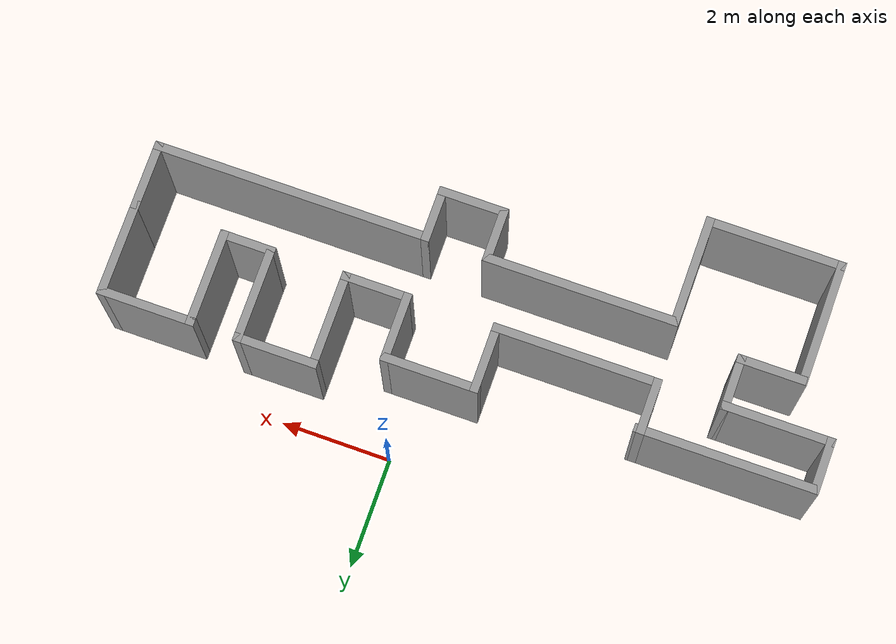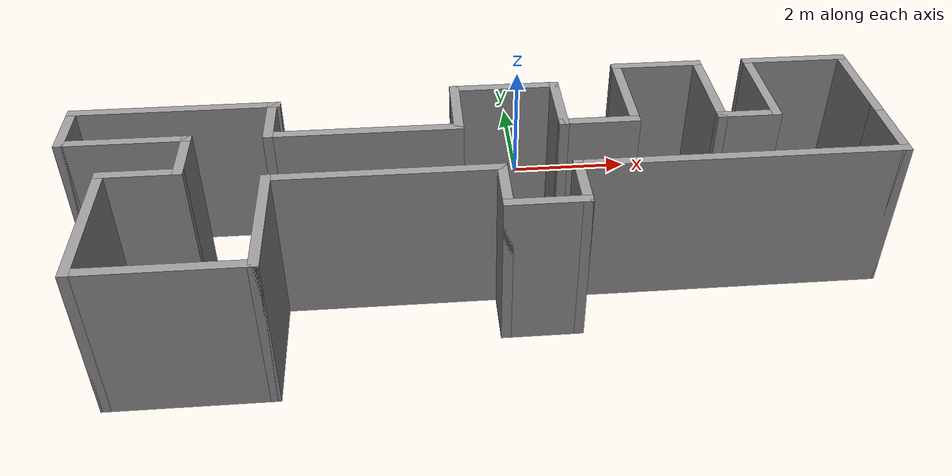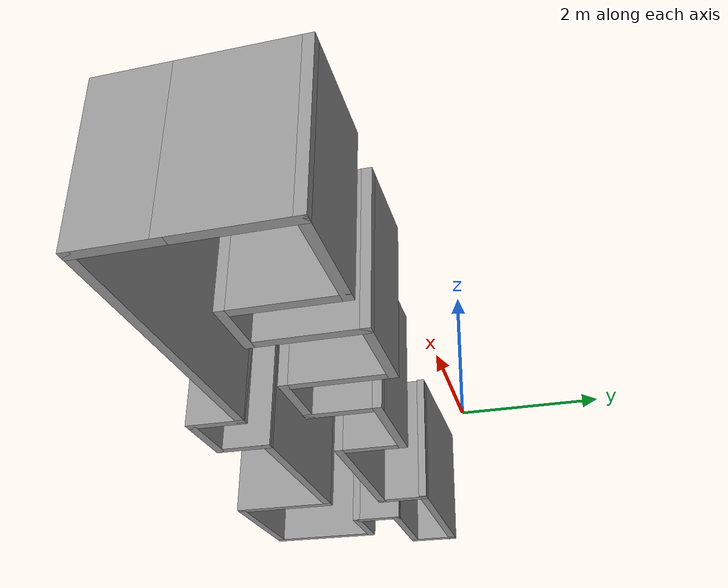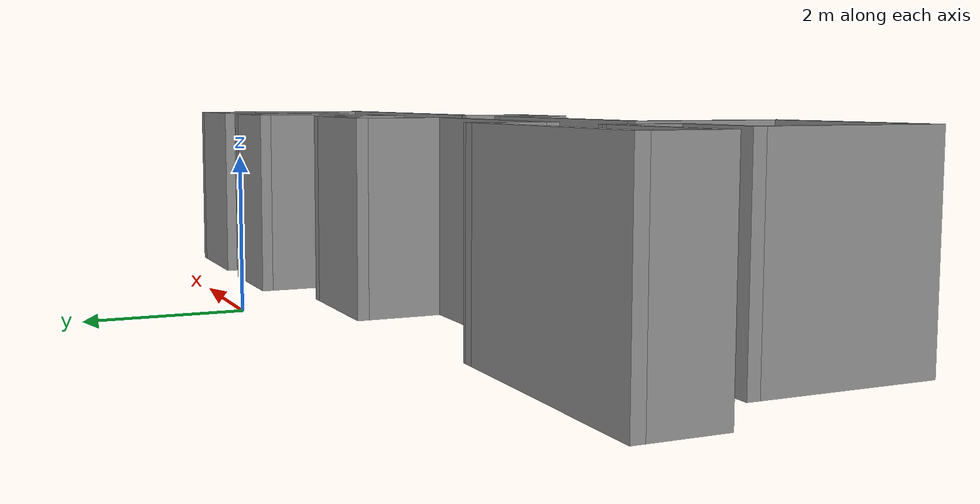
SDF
<?xml version='1.0'?>
<sdf version='1.6'>
  <model name='Yiping_apt'>
    <pose frame=''>-0.86 -2.995 0 0 -0 0</pose>
    <link name='Wall_0'>
      <collision name='Wall_0_Collision'>
        <geometry>
          <box>
            <size>3.25 0.15 2.5</size>
          </box>
        </geometry>
        <pose frame=''>0 0 1.25 0 -0 0</pose>
      </collision>
      <visual name='Wall_0_Visual'>
        <pose frame=''>0 0 1.25 0 -0 0</pose>
        <geometry>
          <box>
            <size>3.25 0.15 2.5</size>
          </box>
        </geometry>
        <material>
          <script>
            <uri>file://media/materials/scripts/gazebo.material</uri>
            <name>Gazebo/Grey</name>
          </script>
          <ambient>1 1 1 1</ambient>
        </material>
      </visual>
      <pose frame=''>-4.65 1.525 0 0 -0 3.14159</pose>
    </link>
    <link name='Wall_1'>
      <collision name='Wall_1_Collision'>
        <geometry>
          <box>
            <size>1 0.15 2.5</size>
          </box>
        </geometry>
        <pose frame=''>0 0 1.25 0 -0 0</pose>
      </collision>
      <visual name='Wall_1_Visual'>
        <pose frame=''>0 0 1.25 0 -0 0</pose>
        <geometry>
          <box>
            <size>1 0.15 2.5</size>
          </box>
        </geometry>
        <material>
          <script>
            <uri>file://media/materials/scripts/gazebo.material</uri>
            <name>Gazebo/Grey</name>
          </script>
          <ambient>1 1 1 1</ambient>
        </material>
      </visual>
      <pose frame=''>-6.2 1.1 0 0 0 -1.5708</pose>
    </link>
    <link name='Wall_10'>
      <collision name='Wall_10_Collision'>
        <geometry>
          <box>
            <size>1.25 0.15 2.5</size>
          </box>
        </geometry>
        <pose frame=''>0 0 1.25 0 -0 0</pose>
      </collision>
      <visual name='Wall_10_Visual'>
        <pose frame=''>0 0 1.25 0 -0 0</pose>
        <geometry>
          <box>
            <size>1.25 0.15 2.5</size>
          </box>
        </geometry>
        <material>
          <script>
            <uri>file://media/materials/scripts/gazebo.material</uri>
            <name>Gazebo/Grey</name>
          </script>
          <ambient>1 1 1 1</ambient>
        </material>
      </visual>
      <pose frame=''>0.8 -1.275 0 0 -0 0</pose>
    </link>
    <link name='Wall_11'>
      <collision name='Wall_11_Collision'>
        <geometry>
          <box>
            <size>1 0.15 2.5</size>
          </box>
        </geometry>
        <pose frame=''>0 0 1.25 0 -0 0</pose>
      </collision>
      <visual name='Wall_11_Visual'>
        <pose frame=''>0 0 1.25 0 -0 0</pose>
        <geometry>
          <box>
            <size>1 0.15 2.5</size>
          </box>
        </geometry>
        <material>
          <script>
            <uri>file://media/materials/scripts/gazebo.material</uri>
            <name>Gazebo/Grey</name>
          </script>
          <ambient>1 1 1 1</ambient>
        </material>
      </visual>
      <pose frame=''>1.35 -0.85 0 0 -0 1.5708</pose>
    </link>
    <link name='Wall_12'>
      <collision name='Wall_12_Collision'>
        <geometry>
          <box>
            <size>5 0.15 2.5</size>
          </box>
        </geometry>
        <pose frame=''>0 0 1.25 0 -0 0</pose>
      </collision>
      <visual name='Wall_12_Visual'>
        <pose frame=''>0 0 1.25 0 -0 0</pose>
        <geometry>
          <box>
            <size>5 0.15 2.5</size>
          </box>
        </geometry>
        <material>
          <script>
            <uri>file://media/materials/scripts/gazebo.material</uri>
            <name>Gazebo/Grey</name>
          </script>
          <ambient>1 1 1 1</ambient>
        </material>
      </visual>
      <pose frame=''>3.775 -0.425 0 0 -0 0</pose>
    </link>
    <link name='Wall_13'>
      <collision name='Wall_13_Collision'>
        <geometry>
          <box>
            <size>1.25 0.15 2.5</size>
          </box>
        </geometry>
        <pose frame=''>0 0 1.25 0 -0 0</pose>
      </collision>
      <visual name='Wall_13_Visual'>
        <pose frame=''>0 0 1.25 0 -0 0</pose>
        <geometry>
          <box>
            <size>1.25 0.15 2.5</size>
          </box>
        </geometry>
        <material>
          <script>
            <uri>file://media/materials/scripts/gazebo.material</uri>
            <name>Gazebo/Grey</name>
          </script>
          <ambient>1 1 1 1</ambient>
        </material>
      </visual>
      <pose frame=''>6.2 0.125 0 0 -0 1.5708</pose>
    </link>
    <link name='Wall_14'>
      <collision name='Wall_14_Collision'>
        <geometry>
          <box>
            <size>1.75 0.15 2.5</size>
          </box>
        </geometry>
        <pose frame=''>0 0 1.25 0 -0 0</pose>
      </collision>
      <visual name='Wall_14_Visual'>
        <pose frame=''>0 0 1.25 0 -0 0</pose>
        <geometry>
          <box>
            <size>1.75 0.15 2.5</size>
          </box>
        </geometry>
        <material>
          <script>
            <uri>file://media/materials/scripts/gazebo.material</uri>
            <name>Gazebo/Grey</name>
          </script>
          <ambient>1 1 1 1</ambient>
        </material>
      </visual>
      <pose frame=''>6.2 1.475 0 0 -0 1.5708</pose>
    </link>
    <link name='Wall_15'>
      <collision name='Wall_15_Collision'>
        <geometry>
          <box>
            <size>1.75 0.15 2.5</size>
          </box>
        </geometry>
        <pose frame=''>0 0 1.25 0 -0 0</pose>
      </collision>
      <visual name='Wall_15_Visual'>
        <pose frame=''>0 0 1.25 0 -0 0</pose>
        <geometry>
          <box>
            <size>1.75 0.15 2.5</size>
          </box>
        </geometry>
        <material>
          <script>
            <uri>file://media/materials/scripts/gazebo.material</uri>
            <name>Gazebo/Grey</name>
          </script>
          <ambient>1 1 1 1</ambient>
        </material>
      </visual>
      <pose frame=''>5.4 2.275 0 0 -0 3.14159</pose>
    </link>
    <link name='Wall_16'>
      <collision name='Wall_16_Collision'>
        <geometry>
          <box>
            <size>1.75 0.15 2.5</size>
          </box>
        </geometry>
        <pose frame=''>0 0 1.25 0 -0 0</pose>
      </collision>
      <visual name='Wall_16_Visual'>
        <pose frame=''>0 0 1.25 0 -0 0</pose>
        <geometry>
          <box>
            <size>1.75 0.15 2.5</size>
          </box>
        </geometry>
        <material>
          <script>
            <uri>file://media/materials/scripts/gazebo.material</uri>
            <name>Gazebo/Grey</name>
          </script>
          <ambient>1 1 1 1</ambient>
        </material>
      </visual>
      <pose frame=''>4.6 1.475 0 0 0 -1.5708</pose>
    </link>
    <link name='Wall_17'>
      <collision name='Wall_17_Collision'>
        <geometry>
          <box>
            <size>1 0.15 2.5</size>
          </box>
        </geometry>
        <pose frame=''>0 0 1.25 0 -0 0</pose>
      </collision>
      <visual name='Wall_17_Visual'>
        <pose frame=''>0 0 1.25 0 -0 0</pose>
        <geometry>
          <box>
            <size>1 0.15 2.5</size>
          </box>
        </geometry>
        <material>
          <script>
            <uri>file://media/materials/scripts/gazebo.material</uri>
            <name>Gazebo/Grey</name>
          </script>
          <ambient>1 1 1 1</ambient>
        </material>
      </visual>
      <pose frame=''>4.175 0.675 0 0 -0 3.14159</pose>
    </link>
    <link name='Wall_18'>
      <collision name='Wall_18_Collision'>
        <geometry>
          <box>
            <size>1.75 0.15 2.5</size>
          </box>
        </geometry>
        <pose frame=''>0 0 1.25 0 -0 0</pose>
      </collision>
      <visual name='Wall_18_Visual'>
        <pose frame=''>0 0 1.25 0 -0 0</pose>
        <geometry>
          <box>
            <size>1.75 0.15 2.5</size>
          </box>
        </geometry>
        <material>
          <script>
            <uri>file://media/materials/scripts/gazebo.material</uri>
            <name>Gazebo/Grey</name>
          </script>
          <ambient>1 1 1 1</ambient>
        </material>
      </visual>
      <pose frame=''>3.75 1.475 0 0 -0 1.5708</pose>
    </link>
    <link name='Wall_19'>
      <collision name='Wall_19_Collision'>
        <geometry>
          <box>
            <size>1.5 0.15 2.5</size>
          </box>
        </geometry>
        <pose frame=''>0 0 1.25 0 -0 0</pose>
      </collision>
      <visual name='Wall_19_Visual'>
        <pose frame=''>0 0 1.25 0 -0 0</pose>
        <geometry>
          <box>
            <size>1.5 0.15 2.5</size>
          </box>
        </geometry>
        <material>
          <script>
            <uri>file://media/materials/scripts/gazebo.material</uri>
            <name>Gazebo/Grey</name>
          </script>
          <ambient>1 1 1 1</ambient>
        </material>
      </visual>
      <pose frame=''>3.075 2.275 0 0 -0 3.14159</pose>
    </link>
    <link name='Wall_2'>
      <collision name='Wall_2_Collision'>
        <geometry>
          <box>
            <size>2 0.15 2.5</size>
          </box>
        </geometry>
        <pose frame=''>0 0 1.25 0 -0 0</pose>
      </collision>
      <visual name='Wall_2_Visual'>
        <pose frame=''>0 0 1.25 0 -0 0</pose>
        <geometry>
          <box>
            <size>2 0.15 2.5</size>
          </box>
        </geometry>
        <material>
          <script>
            <uri>file://media/materials/scripts/gazebo.material</uri>
            <name>Gazebo/Grey</name>
          </script>
          <ambient>1 1 1 1</ambient>
        </material>
      </visual>
      <pose frame=''>-5.275 0.675 0 0 -0 0</pose>
    </link>
    <link name='Wall_20'>
      <collision name='Wall_20_Collision'>
        <geometry>
          <box>
            <size>1.75 0.15 2.5</size>
          </box>
        </geometry>
        <pose frame=''>0 0 1.25 0 -0 0</pose>
      </collision>
      <visual name='Wall_20_Visual'>
        <pose frame=''>0 0 1.25 0 -0 0</pose>
        <geometry>
          <box>
            <size>1.75 0.15 2.5</size>
          </box>
        </geometry>
        <material>
          <script>
            <uri>file://media/materials/scripts/gazebo.material</uri>
            <name>Gazebo/Grey</name>
          </script>
          <ambient>1 1 1 1</ambient>
        </material>
      </visual>
      <pose frame=''>2.4 1.475 0 0 0 -1.5708</pose>
    </link>
    <link name='Wall_21'>
      <collision name='Wall_21_Collision'>
        <geometry>
          <box>
            <size>1.25 0.15 2.5</size>
          </box>
        </geometry>
        <pose frame=''>0 0 1.25 0 -0 0</pose>
      </collision>
      <visual name='Wall_21_Visual'>
        <pose frame=''>0 0 1.25 0 -0 0</pose>
        <geometry>
          <box>
            <size>1.25 0.15 2.5</size>
          </box>
        </geometry>
        <material>
          <script>
            <uri>file://media/materials/scripts/gazebo.material</uri>
            <name>Gazebo/Grey</name>
          </script>
          <ambient>1 1 1 1</ambient>
        </material>
      </visual>
      <pose frame=''>1.85 0.675 0 0 -0 3.14159</pose>
    </link>
    <link name='Wall_22'>
      <collision name='Wall_22_Collision'>
        <geometry>
          <box>
            <size>1.25 0.15 2.5</size>
          </box>
        </geometry>
        <pose frame=''>0 0 1.25 0 -0 0</pose>
      </collision>
      <visual name='Wall_22_Visual'>
        <pose frame=''>0 0 1.25 0 -0 0</pose>
        <geometry>
          <box>
            <size>1.25 0.15 2.5</size>
          </box>
        </geometry>
        <material>
          <script>
            <uri>file://media/materials/scripts/gazebo.material</uri>
            <name>Gazebo/Grey</name>
          </script>
          <ambient>1 1 1 1</ambient>
        </material>
      </visual>
      <pose frame=''>1.3 1.225 0 0 -0 1.5708</pose>
    </link>
    <link name='Wall_23'>
      <collision name='Wall_23_Collision'>
        <geometry>
          <box>
            <size>1.75 0.15 2.5</size>
          </box>
        </geometry>
        <pose frame=''>0 0 1.25 0 -0 0</pose>
      </collision>
      <visual name='Wall_23_Visual'>
        <pose frame=''>0 0 1.25 0 -0 0</pose>
        <geometry>
          <box>
            <size>1.75 0.15 2.5</size>
          </box>
        </geometry>
        <material>
          <script>
            <uri>file://media/materials/scripts/gazebo.material</uri>
            <name>Gazebo/Grey</name>
          </script>
          <ambient>1 1 1 1</ambient>
        </material>
      </visual>
      <pose frame=''>0.5 1.775 0 0 -0 3.14159</pose>
    </link>
    <link name='Wall_24'>
      <collision name='Wall_24_Collision'>
        <geometry>
          <box>
            <size>1.25 0.15 2.5</size>
          </box>
        </geometry>
        <pose frame=''>0 0 1.25 0 -0 0</pose>
      </collision>
      <visual name='Wall_24_Visual'>
        <pose frame=''>0 0 1.25 0 -0 0</pose>
        <geometry>
          <box>
            <size>1.25 0.15 2.5</size>
          </box>
        </geometry>
        <material>
          <script>
            <uri>file://media/materials/scripts/gazebo.material</uri>
            <name>Gazebo/Grey</name>
          </script>
          <ambient>1 1 1 1</ambient>
        </material>
      </visual>
      <pose frame=''>-0.3 1.225 0 0 0 -1.5708</pose>
    </link>
    <link name='Wall_25'>
      <collision name='Wall_25_Collision'>
        <geometry>
          <box>
            <size>3 0.15 2.5</size>
          </box>
        </geometry>
        <pose frame=''>0 0 1.25 0 -0 0</pose>
      </collision>
      <visual name='Wall_25_Visual'>
        <pose frame=''>0 0 1.25 0 -0 0</pose>
        <geometry>
          <box>
            <size>3 0.15 2.5</size>
          </box>
        </geometry>
        <material>
          <script>
            <uri>file://media/materials/scripts/gazebo.material</uri>
            <name>Gazebo/Grey</name>
          </script>
          <ambient>1 1 1 1</ambient>
        </material>
      </visual>
      <pose frame=''>-1.725 0.675 0 0 -0 3.14159</pose>
    </link>
    <link name='Wall_26'>
      <collision name='Wall_26_Collision'>
        <geometry>
          <box>
            <size>1 0.15 2.5</size>
          </box>
        </geometry>
        <pose frame=''>0 0 1.25 0 -0 0</pose>
      </collision>
      <visual name='Wall_26_Visual'>
        <pose frame=''>0 0 1.25 0 -0 0</pose>
        <geometry>
          <box>
            <size>1 0.15 2.5</size>
          </box>
        </geometry>
        <material>
          <script>
            <uri>file://media/materials/scripts/gazebo.material</uri>
            <name>Gazebo/Grey</name>
          </script>
          <ambient>1 1 1 1</ambient>
        </material>
      </visual>
      <pose frame=''>-3.15 1.1 0 0 -0 1.5708</pose>
    </link>
    <link name='Wall_3'>
      <collision name='Wall_3_Collision'>
        <geometry>
          <box>
            <size>1 0.15 2.5</size>
          </box>
        </geometry>
        <pose frame=''>0 0 1.25 0 -0 0</pose>
      </collision>
      <visual name='Wall_3_Visual'>
        <pose frame=''>0 0 1.25 0 -0 0</pose>
        <geometry>
          <box>
            <size>1 0.15 2.5</size>
          </box>
        </geometry>
        <material>
          <script>
            <uri>file://media/materials/scripts/gazebo.material</uri>
            <name>Gazebo/Grey</name>
          </script>
          <ambient>1 1 1 1</ambient>
        </material>
      </visual>
      <pose frame=''>-4.35 0.25 0 0 0 -1.5708</pose>
    </link>
    <link name='Wall_4'>
      <collision name='Wall_4_Collision'>
        <geometry>
          <box>
            <size>1.25 0.15 2.5</size>
          </box>
        </geometry>
        <pose frame=''>0 0 1.25 0 -0 0</pose>
      </collision>
      <visual name='Wall_4_Visual'>
        <pose frame=''>0 0 1.25 0 -0 0</pose>
        <geometry>
          <box>
            <size>1.25 0.15 2.5</size>
          </box>
        </geometry>
        <material>
          <script>
            <uri>file://media/materials/scripts/gazebo.material</uri>
            <name>Gazebo/Grey</name>
          </script>
          <ambient>1 1 1 1</ambient>
        </material>
      </visual>
      <pose frame=''>-4.9 -0.175 0 0 -0 3.14159</pose>
    </link>
    <link name='Wall_5'>
      <collision name='Wall_5_Collision'>
        <geometry>
          <box>
            <size>2.25 0.15 2.5</size>
          </box>
        </geometry>
        <pose frame=''>0 0 1.25 0 -0 0</pose>
      </collision>
      <visual name='Wall_5_Visual'>
        <pose frame=''>0 0 1.25 0 -0 0</pose>
        <geometry>
          <box>
            <size>2.25 0.15 2.5</size>
          </box>
        </geometry>
        <material>
          <script>
            <uri>file://media/materials/scripts/gazebo.material</uri>
            <name>Gazebo/Grey</name>
          </script>
          <ambient>1 1 1 1</ambient>
        </material>
      </visual>
      <pose frame=''>-5.45 -1.225 0 0 0 -1.5708</pose>
    </link>
    <link name='Wall_6'>
      <collision name='Wall_6_Collision'>
        <geometry>
          <box>
            <size>2.5 0.15 2.5</size>
          </box>
        </geometry>
        <pose frame=''>0 0 1.25 0 -0 0</pose>
      </collision>
      <visual name='Wall_6_Visual'>
        <pose frame=''>0 0 1.25 0 -0 0</pose>
        <geometry>
          <box>
            <size>2.5 0.15 2.5</size>
          </box>
        </geometry>
        <material>
          <script>
            <uri>file://media/materials/scripts/gazebo.material</uri>
            <name>Gazebo/Grey</name>
          </script>
          <ambient>1 1 1 1</ambient>
        </material>
      </visual>
      <pose frame=''>-4.275 -2.275 0 0 -0 0</pose>
    </link>
    <link name='Wall_7'>
      <collision name='Wall_7_Collision'>
        <geometry>
          <box>
            <size>2 0.15 2.5</size>
          </box>
        </geometry>
        <pose frame=''>0 0 1.25 0 -0 0</pose>
      </collision>
      <visual name='Wall_7_Visual'>
        <pose frame=''>0 0 1.25 0 -0 0</pose>
        <geometry>
          <box>
            <size>2 0.15 2.5</size>
          </box>
        </geometry>
        <material>
          <script>
            <uri>file://media/materials/scripts/gazebo.material</uri>
            <name>Gazebo/Grey</name>
          </script>
          <ambient>1 1 1 1</ambient>
        </material>
      </visual>
      <pose frame=''>-3.1 -1.35 0 0 -0 1.5708</pose>
    </link>
    <link name='Wall_8'>
      <collision name='Wall_8_Collision'>
        <geometry>
          <box>
            <size>3.5 0.15 2.5</size>
          </box>
        </geometry>
        <pose frame=''>0 0 1.25 0 -0 0</pose>
      </collision>
      <visual name='Wall_8_Visual'>
        <pose frame=''>0 0 1.25 0 -0 0</pose>
        <geometry>
          <box>
            <size>3.5 0.15 2.5</size>
          </box>
        </geometry>
        <material>
          <script>
            <uri>file://media/materials/scripts/gazebo.material</uri>
            <name>Gazebo/Grey</name>
          </script>
          <ambient>1 1 1 1</ambient>
        </material>
      </visual>
      <pose frame=''>-1.425 -0.425 0 0 -0 0</pose>
    </link>
    <link name='Wall_9'>
      <collision name='Wall_9_Collision'>
        <geometry>
          <box>
            <size>1 0.15 2.5</size>
          </box>
        </geometry>
        <pose frame=''>0 0 1.25 0 -0 0</pose>
      </collision>
      <visual name='Wall_9_Visual'>
        <pose frame=''>0 0 1.25 0 -0 0</pose>
        <geometry>
          <box>
            <size>1 0.15 2.5</size>
          </box>
        </geometry>
        <material>
          <script>
            <uri>file://media/materials/scripts/gazebo.material</uri>
            <name>Gazebo/Grey</name>
          </script>
          <ambient>1 1 1 1</ambient>
        </material>
      </visual>
      <pose frame=''>0.25 -0.85 0 0 0 -1.5708</pose>
    </link>
    <static>1</static>
  </model>
</sdf>
